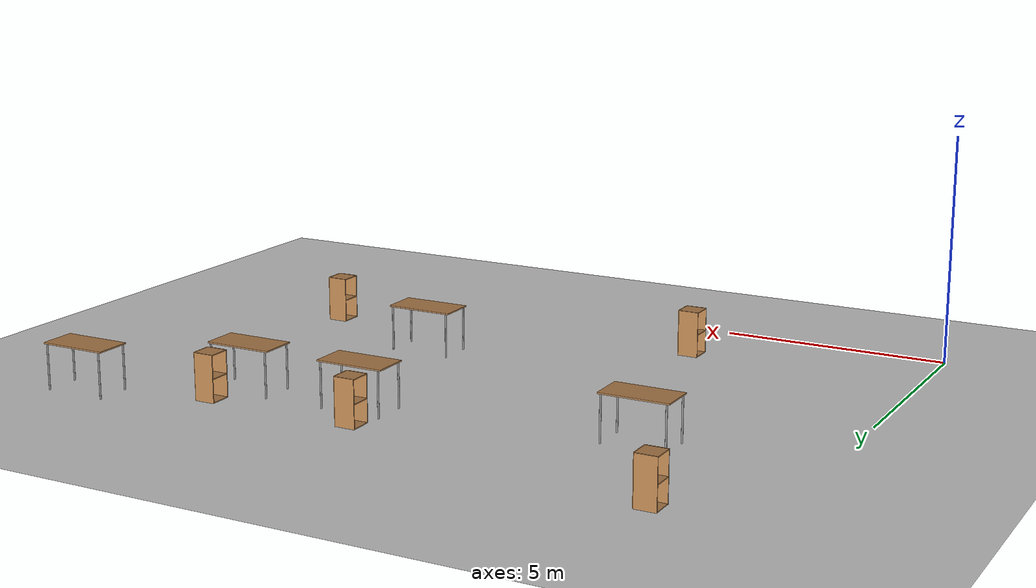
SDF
<sdf version="1.7">
 <world name="default">
  <model name="ground_plane">
   <static>1</static>
   <link name="link">
    <collision name="collision">
     <geometry><plane><normal>0 0 1</normal><size>100 100</size></plane></geometry>
     <surface><friction><ode><mu>100</mu><mu2>50</mu2></ode></friction></surface>
    </collision>
    <visual name="visual">
     <cast_shadows>0</cast_shadows>
     <geometry><plane><normal>0 0 1</normal><size>100 100</size></plane></geometry>
     <material>
      <script><uri>file://media/materials/scripts/gazebo.material</uri><name>Gazebo/Grey</name></script>
     </material>
    </visual>
   </link>
  </model>
  <model name="table_clone_1">
   <static>1</static>
   <link name="link">
    <collision name="surface">
     <pose>0 0 1 0 -0 0</pose>
     <geometry><box><size>1.5 0.8 0.03</size></box></geometry>
     <surface><friction><ode><mu>0.6</mu><mu2>0.6</mu2></ode></friction></surface>
    </collision>
    <visual name="visual1">
     <pose>0 0 1 0 -0 0</pose>
     <geometry><box><size>1.5 0.8 0.03</size></box></geometry>
     <material>
      <script><uri>file://media/materials/scripts/gazebo.material</uri><name>Gazebo/Wood</name></script>
     </material>
    </visual>
    <collision name="front_left_leg">
     <pose>0.68 0.38 0.5 0 -0 0</pose>
     <geometry><cylinder><radius>0.02</radius><length>1</length></cylinder></geometry>
    </collision>
    <visual name="front_left_leg">
     <pose>0.68 0.38 0.5 0 -0 0</pose>
     <geometry><cylinder><radius>0.02</radius><length>1</length></cylinder></geometry>
     <material>
      <script><uri>file://media/materials/scripts/gazebo.material</uri><name>Gazebo/Grey</name></script>
     </material>
    </visual>
    <collision name="front_right_leg">
     <pose>0.68 -0.38 0.5 0 -0 0</pose>
     <geometry><cylinder><radius>0.02</radius><length>1</length></cylinder></geometry>
    </collision>
    <visual name="front_right_leg">
     <pose>0.68 -0.38 0.5 0 -0 0</pose>
     <geometry><cylinder><radius>0.02</radius><length>1</length></cylinder></geometry>
     <material>
      <script><uri>file://media/materials/scripts/gazebo.material</uri><name>Gazebo/Grey</name></script>
     </material>
    </visual>
    <collision name="back_right_leg">
     <pose>-0.68 -0.38 0.5 0 -0 0</pose>
     <geometry><cylinder><radius>0.02</radius><length>1</length></cylinder></geometry>
    </collision>
    <visual name="back_right_leg">
     <pose>-0.68 -0.38 0.5 0 -0 0</pose>
     <geometry><cylinder><radius>0.02</radius><length>1</length></cylinder></geometry>
     <material>
      <script><uri>file://media/materials/scripts/gazebo.material</uri><name>Gazebo/Grey</name></script>
     </material>
    </visual>
    <collision name="back_left_leg">
     <pose>-0.68 0.38 0.5 0 -0 0</pose>
     <geometry><cylinder><radius>0.02</radius><length>1</length></cylinder></geometry>
    </collision>
    <visual name="back_left_leg">
     <pose>-0.68 0.38 0.5 0 -0 0</pose>
     <geometry><cylinder><radius>0.02</radius><length>1</length></cylinder></geometry>
     <material>
      <script><uri>file://media/materials/scripts/gazebo.material</uri><name>Gazebo/Grey</name></script>
     </material>
    </visual>
   </link>
   <pose>3.6038 8.0012 0 0 -0 0</pose>
  </model>
  <model name="table_clone_1_clone">
   <static>1</static>
   <link name="link">
    <collision name="surface">
     <pose>0 0 1 0 -0 0</pose>
     <geometry><box><size>1.5 0.8 0.03</size></box></geometry>
     <surface><friction><ode><mu>0.6</mu><mu2>0.6</mu2></ode></friction></surface>
    </collision>
    <visual name="visual1">
     <pose>0 0 1 0 -0 0</pose>
     <geometry><box><size>1.5 0.8 0.03</size></box></geometry>
     <material>
      <script><uri>file://media/materials/scripts/gazebo.material</uri><name>Gazebo/Wood</name></script>
     </material>
    </visual>
    <collision name="front_left_leg">
     <pose>0.68 0.38 0.5 0 -0 0</pose>
     <geometry><cylinder><radius>0.02</radius><length>1</length></cylinder></geometry>
    </collision>
    <visual name="front_left_leg">
     <pose>0.68 0.38 0.5 0 -0 0</pose>
     <geometry><cylinder><radius>0.02</radius><length>1</length></cylinder></geometry>
     <material>
      <script><uri>file://media/materials/scripts/gazebo.material</uri><name>Gazebo/Grey</name></script>
     </material>
    </visual>
    <collision name="front_right_leg">
     <pose>0.68 -0.38 0.5 0 -0 0</pose>
     <geometry><cylinder><radius>0.02</radius><length>1</length></cylinder></geometry>
    </collision>
    <visual name="front_right_leg">
     <pose>0.68 -0.38 0.5 0 -0 0</pose>
     <geometry><cylinder><radius>0.02</radius><length>1</length></cylinder></geometry>
     <material>
      <script><uri>file://media/materials/scripts/gazebo.material</uri><name>Gazebo/Grey</name></script>
     </material>
    </visual>
    <collision name="back_right_leg">
     <pose>-0.68 -0.38 0.5 0 -0 0</pose>
     <geometry><cylinder><radius>0.02</radius><length>1</length></cylinder></geometry>
    </collision>
    <visual name="back_right_leg">
     <pose>-0.68 -0.38 0.5 0 -0 0</pose>
     <geometry><cylinder><radius>0.02</radius><length>1</length></cylinder></geometry>
     <material>
      <script><uri>file://media/materials/scripts/gazebo.material</uri><name>Gazebo/Grey</name></script>
     </material>
    </visual>
    <collision name="back_left_leg">
     <pose>-0.68 0.38 0.5 0 -0 0</pose>
     <geometry><cylinder><radius>0.02</radius><length>1</length></cylinder></geometry>
    </collision>
    <visual name="back_left_leg">
     <pose>-0.68 0.38 0.5 0 -0 0</pose>
     <geometry><cylinder><radius>0.02</radius><length>1</length></cylinder></geometry>
     <material>
      <script><uri>file://media/materials/scripts/gazebo.material</uri><name>Gazebo/Grey</name></script>
     </material>
    </visual>
   </link>
   <pose>9.45234 8.75079 0 0 -0 0</pose>
  </model>
  <model name="table_clone_1_clone_0_clone_0">
   <static>1</static>
   <link name="link">
    <collision name="surface">
     <pose>0 0 1 0 -0 0</pose>
     <geometry><box><size>1.5 0.8 0.03</size></box></geometry>
     <surface><friction><ode><mu>0.6</mu><mu2>0.6</mu2></ode></friction></surface>
    </collision>
    <visual name="visual1">
     <pose>0 0 1 0 -0 0</pose>
     <geometry><box><size>1.5 0.8 0.03</size></box></geometry>
     <material>
      <script><uri>file://media/materials/scripts/gazebo.material</uri><name>Gazebo/Wood</name></script>
     </material>
    </visual>
    <collision name="front_left_leg">
     <pose>0.68 0.38 0.5 0 -0 0</pose>
     <geometry><cylinder><radius>0.02</radius><length>1</length></cylinder></geometry>
    </collision>
    <visual name="front_left_leg">
     <pose>0.68 0.38 0.5 0 -0 0</pose>
     <geometry><cylinder><radius>0.02</radius><length>1</length></cylinder></geometry>
     <material>
      <script><uri>file://media/materials/scripts/gazebo.material</uri><name>Gazebo/Grey</name></script>
     </material>
    </visual>
    <collision name="front_right_leg">
     <pose>0.68 -0.38 0.5 0 -0 0</pose>
     <geometry><cylinder><radius>0.02</radius><length>1</length></cylinder></geometry>
    </collision>
    <visual name="front_right_leg">
     <pose>0.68 -0.38 0.5 0 -0 0</pose>
     <geometry><cylinder><radius>0.02</radius><length>1</length></cylinder></geometry>
     <material>
      <script><uri>file://media/materials/scripts/gazebo.material</uri><name>Gazebo/Grey</name></script>
     </material>
    </visual>
    <collision name="back_right_leg">
     <pose>-0.68 -0.38 0.5 0 -0 0</pose>
     <geometry><cylinder><radius>0.02</radius><length>1</length></cylinder></geometry>
    </collision>
    <visual name="back_right_leg">
     <pose>-0.68 -0.38 0.5 0 -0 0</pose>
     <geometry><cylinder><radius>0.02</radius><length>1</length></cylinder></geometry>
     <material>
      <script><uri>file://media/materials/scripts/gazebo.material</uri><name>Gazebo/Grey</name></script>
     </material>
    </visual>
    <collision name="back_left_leg">
     <pose>-0.68 0.38 0.5 0 -0 0</pose>
     <geometry><cylinder><radius>0.02</radius><length>1</length></cylinder></geometry>
    </collision>
    <visual name="back_left_leg">
     <pose>-0.68 0.38 0.5 0 -0 0</pose>
     <geometry><cylinder><radius>0.02</radius><length>1</length></cylinder></geometry>
     <material>
      <script><uri>file://media/materials/scripts/gazebo.material</uri><name>Gazebo/Grey</name></script>
     </material>
    </visual>
   </link>
   <pose>10.4445 4.43795 0 0 -0 0</pose>
  </model>
  <model name="cabinet">
   <static>1</static>
   <link name="cabinet_bottom_plate">
    <inertial>
     <pose>0 0 -1 0 -0 0</pose>
     <inertia><ixx>2.05</ixx><ixy>0</ixy><ixz>0</ixz><iyy>2.05</iyy><iyz>0</iyz><izz>2.05</izz></inertia>
     <mass>25</mass>
    </inertial>
    <collision name="cabinet_bottom_plate_geom">
     <pose>0 0 0.01 0 -0 0</pose>
     <geometry><box><size>0.45 0.45 0.02</size></box></geometry>
    </collision>
    <visual name="cabinet_bottom_plate_geom_visual">
     <pose>0 0 0.01 0 -0 0</pose>
     <geometry><box><size>0.45 0.45 0.02</size></box></geometry>
     <material>
      <script><uri>file://media/materials/scripts/gazebo.material</uri><name>Gazebo/Wood</name></script>
     </material>
    </visual>
    <collision name="cabinet_bottom_plate_geom_cabinet_back_plate">
     <pose>0.235 0 0.51 0 -0 0</pose>
     <geometry><box><size>0.02 0.45 1.02</size></box></geometry>
    </collision>
    <visual name="cabinet_bottom_plate_geom_cabinet_back_plate_visual">
     <pose>0.235 0 0.51 0 -0 0</pose>
     <geometry><box><size>0.02 0.45 1.02</size></box></geometry>
     <material>
      <script><uri>file://media/materials/scripts/gazebo.material</uri><name>Gazebo/Wood</name></script>
     </material>
    </visual>
    <collision name="cabinet_bottom_plate_geom_cabinet_left_plate">
     <pose>0 0.235 0.51 0 -0 0</pose>
     <geometry><box><size>0.45 0.02 1.02</size></box></geometry>
    </collision>
    <visual name="cabinet_bottom_plate_geom_cabinet_left_plate_visual">
     <pose>0 0.235 0.51 0 -0 0</pose>
     <geometry><box><size>0.45 0.02 1.02</size></box></geometry>
     <material>
      <script><uri>file://media/materials/scripts/gazebo.material</uri><name>Gazebo/Wood</name></script>
     </material>
    </visual>
    <collision name="cabinet_bottom_plate_geom_cabinet_middle_plate">
     <pose>0 0 0.51 0 -0 0</pose>
     <geometry><box><size>0.45 0.45 0.02</size></box></geometry>
    </collision>
    <visual name="cabinet_bottom_plate_geom_cabinet_middle_plate_visual">
     <pose>0 0 0.51 0 -0 0</pose>
     <geometry><box><size>0.45 0.45 0.02</size></box></geometry>
     <material>
      <script><uri>file://media/materials/scripts/gazebo.material</uri><name>Gazebo/Wood</name></script>
     </material>
    </visual>
    <collision name="cabinet_bottom_plate_geom_cabinet_right_plate">
     <pose>0 -0.235 0.51 0 -0 0</pose>
     <geometry><box><size>0.45 0.02 1.02</size></box></geometry>
    </collision>
    <visual name="cabinet_bottom_plate_geom_cabinet_right_plate_visual">
     <pose>0 -0.235 0.51 0 -0 0</pose>
     <geometry><box><size>0.45 0.02 1.02</size></box></geometry>
     <material>
      <script><uri>file://media/materials/scripts/gazebo.material</uri><name>Gazebo/Wood</name></script>
     </material>
    </visual>
    <collision name="cabinet_bottom_plate_geom_cabinet_top_plate">
     <pose>0 0 1.01 0 -0 0</pose>
     <geometry><box><size>0.45 0.45 0.02</size></box></geometry>
    </collision>
    <visual name="cabinet_bottom_plate_geom_cabinet_top_plate_visual">
     <pose>0 0 1.01 0 -0 0</pose>
     <geometry><box><size>0.45 0.45 0.02</size></box></geometry>
     <material>
      <script><uri>file://media/materials/scripts/gazebo.material</uri><name>Gazebo/Wood</name></script>
     </material>
    </visual>
   </link>
   <pose>2.07586 10.9413 0 0 -0 0</pose>
  </model>
  <model name="cabinet_clone">
   <static>1</static>
   <link name="cabinet_bottom_plate">
    <inertial>
     <pose>0 0 -1 0 -0 0</pose>
     <inertia><ixx>2.05</ixx><ixy>0</ixy><ixz>0</ixz><iyy>2.05</iyy><iyz>0</iyz><izz>2.05</izz></inertia>
     <mass>25</mass>
    </inertial>
    <collision name="cabinet_bottom_plate_geom">
     <pose>0 0 0.01 0 -0 0</pose>
     <geometry><box><size>0.45 0.45 0.02</size></box></geometry>
    </collision>
    <visual name="cabinet_bottom_plate_geom_visual">
     <pose>0 0 0.01 0 -0 0</pose>
     <geometry><box><size>0.45 0.45 0.02</size></box></geometry>
     <material>
      <script><uri>file://media/materials/scripts/gazebo.material</uri><name>Gazebo/Wood</name></script>
     </material>
    </visual>
    <collision name="cabinet_bottom_plate_geom_cabinet_back_plate">
     <pose>0.235 0 0.51 0 -0 0</pose>
     <geometry><box><size>0.02 0.45 1.02</size></box></geometry>
    </collision>
    <visual name="cabinet_bottom_plate_geom_cabinet_back_plate_visual">
     <pose>0.235 0 0.51 0 -0 0</pose>
     <geometry><box><size>0.02 0.45 1.02</size></box></geometry>
     <material>
      <script><uri>file://media/materials/scripts/gazebo.material</uri><name>Gazebo/Wood</name></script>
     </material>
    </visual>
    <collision name="cabinet_bottom_plate_geom_cabinet_left_plate">
     <pose>0 0.235 0.51 0 -0 0</pose>
     <geometry><box><size>0.45 0.02 1.02</size></box></geometry>
    </collision>
    <visual name="cabinet_bottom_plate_geom_cabinet_left_plate_visual">
     <pose>0 0.235 0.51 0 -0 0</pose>
     <geometry><box><size>0.45 0.02 1.02</size></box></geometry>
     <material>
      <script><uri>file://media/materials/scripts/gazebo.material</uri><name>Gazebo/Wood</name></script>
     </material>
    </visual>
    <collision name="cabinet_bottom_plate_geom_cabinet_middle_plate">
     <pose>0 0 0.51 0 -0 0</pose>
     <geometry><box><size>0.45 0.45 0.02</size></box></geometry>
    </collision>
    <visual name="cabinet_bottom_plate_geom_cabinet_middle_plate_visual">
     <pose>0 0 0.51 0 -0 0</pose>
     <geometry><box><size>0.45 0.45 0.02</size></box></geometry>
     <material>
      <script><uri>file://media/materials/scripts/gazebo.material</uri><name>Gazebo/Wood</name></script>
     </material>
    </visual>
    <collision name="cabinet_bottom_plate_geom_cabinet_right_plate">
     <pose>0 -0.235 0.51 0 -0 0</pose>
     <geometry><box><size>0.45 0.02 1.02</size></box></geometry>
    </collision>
    <visual name="cabinet_bottom_plate_geom_cabinet_right_plate_visual">
     <pose>0 -0.235 0.51 0 -0 0</pose>
     <geometry><box><size>0.45 0.02 1.02</size></box></geometry>
     <material>
      <script><uri>file://media/materials/scripts/gazebo.material</uri><name>Gazebo/Wood</name></script>
     </material>
    </visual>
    <collision name="cabinet_bottom_plate_geom_cabinet_top_plate">
     <pose>0 0 1.01 0 -0 0</pose>
     <geometry><box><size>0.45 0.45 0.02</size></box></geometry>
    </collision>
    <visual name="cabinet_bottom_plate_geom_cabinet_top_plate_visual">
     <pose>0 0 1.01 0 -0 0</pose>
     <geometry><box><size>0.45 0.45 0.02</size></box></geometry>
     <material>
      <script><uri>file://media/materials/scripts/gazebo.material</uri><name>Gazebo/Wood</name></script>
     </material>
    </visual>
   </link>
   <pose>5.13992 1.93645 0 0 -0 0</pose>
  </model>
  <model name="cabinet_clone_clone_0">
   <static>1</static>
   <link name="cabinet_bottom_plate">
    <inertial>
     <pose>0 0 -1 0 -0 0</pose>
     <inertia><ixx>2.05</ixx><ixy>0</ixy><ixz>0</ixz><iyy>2.05</iyy><iyz>0</iyz><izz>2.05</izz></inertia>
     <mass>25</mass>
    </inertial>
    <collision name="cabinet_bottom_plate_geom">
     <pose>0 0 0.01 0 -0 0</pose>
     <geometry><box><size>0.45 0.45 0.02</size></box></geometry>
    </collision>
    <visual name="cabinet_bottom_plate_geom_visual">
     <pose>0 0 0.01 0 -0 0</pose>
     <geometry><box><size>0.45 0.45 0.02</size></box></geometry>
     <material>
      <script><uri>file://media/materials/scripts/gazebo.material</uri><name>Gazebo/Wood</name></script>
     </material>
    </visual>
    <collision name="cabinet_bottom_plate_geom_cabinet_back_plate">
     <pose>0.235 0 0.51 0 -0 0</pose>
     <geometry><box><size>0.02 0.45 1.02</size></box></geometry>
    </collision>
    <visual name="cabinet_bottom_plate_geom_cabinet_back_plate_visual">
     <pose>0.235 0 0.51 0 -0 0</pose>
     <geometry><box><size>0.02 0.45 1.02</size></box></geometry>
     <material>
      <script><uri>file://media/materials/scripts/gazebo.material</uri><name>Gazebo/Wood</name></script>
     </material>
    </visual>
    <collision name="cabinet_bottom_plate_geom_cabinet_left_plate">
     <pose>0 0.235 0.51 0 -0 0</pose>
     <geometry><box><size>0.45 0.02 1.02</size></box></geometry>
    </collision>
    <visual name="cabinet_bottom_plate_geom_cabinet_left_plate_visual">
     <pose>0 0.235 0.51 0 -0 0</pose>
     <geometry><box><size>0.45 0.02 1.02</size></box></geometry>
     <material>
      <script><uri>file://media/materials/scripts/gazebo.material</uri><name>Gazebo/Wood</name></script>
     </material>
    </visual>
    <collision name="cabinet_bottom_plate_geom_cabinet_middle_plate">
     <pose>0 0 0.51 0 -0 0</pose>
     <geometry><box><size>0.45 0.45 0.02</size></box></geometry>
    </collision>
    <visual name="cabinet_bottom_plate_geom_cabinet_middle_plate_visual">
     <pose>0 0 0.51 0 -0 0</pose>
     <geometry><box><size>0.45 0.45 0.02</size></box></geometry>
     <material>
      <script><uri>file://media/materials/scripts/gazebo.material</uri><name>Gazebo/Wood</name></script>
     </material>
    </visual>
    <collision name="cabinet_bottom_plate_geom_cabinet_right_plate">
     <pose>0 -0.235 0.51 0 -0 0</pose>
     <geometry><box><size>0.45 0.02 1.02</size></box></geometry>
    </collision>
    <visual name="cabinet_bottom_plate_geom_cabinet_right_plate_visual">
     <pose>0 -0.235 0.51 0 -0 0</pose>
     <geometry><box><size>0.45 0.02 1.02</size></box></geometry>
     <material>
      <script><uri>file://media/materials/scripts/gazebo.material</uri><name>Gazebo/Wood</name></script>
     </material>
    </visual>
    <collision name="cabinet_bottom_plate_geom_cabinet_top_plate">
     <pose>0 0 1.01 0 -0 0</pose>
     <geometry><box><size>0.45 0.45 0.02</size></box></geometry>
    </collision>
    <visual name="cabinet_bottom_plate_geom_cabinet_top_plate_visual">
     <pose>0 0 1.01 0 -0 0</pose>
     <geometry><box><size>0.45 0.45 0.02</size></box></geometry>
     <material>
      <script><uri>file://media/materials/scripts/gazebo.material</uri><name>Gazebo/Wood</name></script>
     </material>
    </visual>
   </link>
   <pose>12.4476 9.68126 0 0 -0 0</pose>
  </model>
  <model name="cabinet_clone_clone_clone_0">
   <static>1</static>
   <link name="cabinet_bottom_plate">
    <inertial>
     <pose>0 0 -1 0 -0 0</pose>
     <inertia><ixx>2.05</ixx><ixy>0</ixy><ixz>0</ixz><iyy>2.05</iyy><iyz>0</iyz><izz>2.05</izz></inertia>
     <mass>25</mass>
    </inertial>
    <collision name="cabinet_bottom_plate_geom">
     <pose>0 0 0.01 0 -0 0</pose>
     <geometry><box><size>0.45 0.45 0.02</size></box></geometry>
    </collision>
    <visual name="cabinet_bottom_plate_geom_visual">
     <pose>0 0 0.01 0 -0 0</pose>
     <geometry><box><size>0.45 0.45 0.02</size></box></geometry>
     <material>
      <script><uri>file://media/materials/scripts/gazebo.material</uri><name>Gazebo/Wood</name></script>
     </material>
    </visual>
    <collision name="cabinet_bottom_plate_geom_cabinet_back_plate">
     <pose>0.235 0 0.51 0 -0 0</pose>
     <geometry><box><size>0.02 0.45 1.02</size></box></geometry>
    </collision>
    <visual name="cabinet_bottom_plate_geom_cabinet_back_plate_visual">
     <pose>0.235 0 0.51 0 -0 0</pose>
     <geometry><box><size>0.02 0.45 1.02</size></box></geometry>
     <material>
      <script><uri>file://media/materials/scripts/gazebo.material</uri><name>Gazebo/Wood</name></script>
     </material>
    </visual>
    <collision name="cabinet_bottom_plate_geom_cabinet_left_plate">
     <pose>0 0.235 0.51 0 -0 0</pose>
     <geometry><box><size>0.45 0.02 1.02</size></box></geometry>
    </collision>
    <visual name="cabinet_bottom_plate_geom_cabinet_left_plate_visual">
     <pose>0 0.235 0.51 0 -0 0</pose>
     <geometry><box><size>0.45 0.02 1.02</size></box></geometry>
     <material>
      <script><uri>file://media/materials/scripts/gazebo.material</uri><name>Gazebo/Wood</name></script>
     </material>
    </visual>
    <collision name="cabinet_bottom_plate_geom_cabinet_middle_plate">
     <pose>0 0 0.51 0 -0 0</pose>
     <geometry><box><size>0.45 0.45 0.02</size></box></geometry>
    </collision>
    <visual name="cabinet_bottom_plate_geom_cabinet_middle_plate_visual">
     <pose>0 0 0.51 0 -0 0</pose>
     <geometry><box><size>0.45 0.45 0.02</size></box></geometry>
     <material>
      <script><uri>file://media/materials/scripts/gazebo.material</uri><name>Gazebo/Wood</name></script>
     </material>
    </visual>
    <collision name="cabinet_bottom_plate_geom_cabinet_right_plate">
     <pose>0 -0.235 0.51 0 -0 0</pose>
     <geometry><box><size>0.45 0.02 1.02</size></box></geometry>
    </collision>
    <visual name="cabinet_bottom_plate_geom_cabinet_right_plate_visual">
     <pose>0 -0.235 0.51 0 -0 0</pose>
     <geometry><box><size>0.45 0.02 1.02</size></box></geometry>
     <material>
      <script><uri>file://media/materials/scripts/gazebo.material</uri><name>Gazebo/Wood</name></script>
     </material>
    </visual>
    <collision name="cabinet_bottom_plate_geom_cabinet_top_plate">
     <pose>0 0 1.01 0 -0 0</pose>
     <geometry><box><size>0.45 0.45 0.02</size></box></geometry>
    </collision>
    <visual name="cabinet_bottom_plate_geom_cabinet_top_plate_visual">
     <pose>0 0 1.01 0 -0 0</pose>
     <geometry><box><size>0.45 0.45 0.02</size></box></geometry>
     <material>
      <script><uri>file://media/materials/scripts/gazebo.material</uri><name>Gazebo/Wood</name></script>
     </material>
    </visual>
   </link>
   <pose>13.5963 3.10306 0 0 -0 0</pose>
  </model>
  <model name="cabinet_clone_clone_clone_clone_clone">
   <static>1</static>
   <link name="cabinet_bottom_plate">
    <inertial>
     <pose>0 0 -1 0 -0 0</pose>
     <inertia><ixx>2.05</ixx><ixy>0</ixy><ixz>0</ixz><iyy>2.05</iyy><iyz>0</iyz><izz>2.05</izz></inertia>
     <mass>25</mass>
    </inertial>
    <collision name="cabinet_bottom_plate_geom">
     <pose>0 0 0.01 0 -0 0</pose>
     <geometry><box><size>0.45 0.45 0.02</size></box></geometry>
    </collision>
    <visual name="cabinet_bottom_plate_geom_visual">
     <pose>0 0 0.01 0 -0 0</pose>
     <geometry><box><size>0.45 0.45 0.02</size></box></geometry>
     <material>
      <script><uri>file://media/materials/scripts/gazebo.material</uri><name>Gazebo/Wood</name></script>
     </material>
    </visual>
    <collision name="cabinet_bottom_plate_geom_cabinet_back_plate">
     <pose>0.235 0 0.51 0 -0 0</pose>
     <geometry><box><size>0.02 0.45 1.02</size></box></geometry>
    </collision>
    <visual name="cabinet_bottom_plate_geom_cabinet_back_plate_visual">
     <pose>0.235 0 0.51 0 -0 0</pose>
     <geometry><box><size>0.02 0.45 1.02</size></box></geometry>
     <material>
      <script><uri>file://media/materials/scripts/gazebo.material</uri><name>Gazebo/Wood</name></script>
     </material>
    </visual>
    <collision name="cabinet_bottom_plate_geom_cabinet_left_plate">
     <pose>0 0.235 0.51 0 -0 0</pose>
     <geometry><box><size>0.45 0.02 1.02</size></box></geometry>
    </collision>
    <visual name="cabinet_bottom_plate_geom_cabinet_left_plate_visual">
     <pose>0 0.235 0.51 0 -0 0</pose>
     <geometry><box><size>0.45 0.02 1.02</size></box></geometry>
     <material>
      <script><uri>file://media/materials/scripts/gazebo.material</uri><name>Gazebo/Wood</name></script>
     </material>
    </visual>
    <collision name="cabinet_bottom_plate_geom_cabinet_middle_plate">
     <pose>0 0 0.51 0 -0 0</pose>
     <geometry><box><size>0.45 0.45 0.02</size></box></geometry>
    </collision>
    <visual name="cabinet_bottom_plate_geom_cabinet_middle_plate_visual">
     <pose>0 0 0.51 0 -0 0</pose>
     <geometry><box><size>0.45 0.45 0.02</size></box></geometry>
     <material>
      <script><uri>file://media/materials/scripts/gazebo.material</uri><name>Gazebo/Wood</name></script>
     </material>
    </visual>
    <collision name="cabinet_bottom_plate_geom_cabinet_right_plate">
     <pose>0 -0.235 0.51 0 -0 0</pose>
     <geometry><box><size>0.45 0.02 1.02</size></box></geometry>
    </collision>
    <visual name="cabinet_bottom_plate_geom_cabinet_right_plate_visual">
     <pose>0 -0.235 0.51 0 -0 0</pose>
     <geometry><box><size>0.45 0.02 1.02</size></box></geometry>
     <material>
      <script><uri>file://media/materials/scripts/gazebo.material</uri><name>Gazebo/Wood</name></script>
     </material>
    </visual>
    <collision name="cabinet_bottom_plate_geom_cabinet_top_plate">
     <pose>0 0 1.01 0 -0 0</pose>
     <geometry><box><size>0.45 0.45 0.02</size></box></geometry>
    </collision>
    <visual name="cabinet_bottom_plate_geom_cabinet_top_plate_visual">
     <pose>0 0 1.01 0 -0 0</pose>
     <geometry><box><size>0.45 0.45 0.02</size></box></geometry>
     <material>
      <script><uri>file://media/materials/scripts/gazebo.material</uri><name>Gazebo/Wood</name></script>
     </material>
    </visual>
   </link>
   <pose>9.03404 9.70425 0 0 -0 0</pose>
  </model>
  <model name="table_clone_1_clone_0_clone_0_clone">
   <static>1</static>
   <link name="link">
    <collision name="surface">
     <pose>0 0 1 0 -0 0</pose>
     <geometry><box><size>1.5 0.8 0.03</size></box></geometry>
     <surface><friction><ode><mu>0.6</mu><mu2>0.6</mu2></ode></friction></surface>
    </collision>
    <visual name="visual1">
     <pose>0 0 1 0 -0 0</pose>
     <geometry><box><size>1.5 0.8 0.03</size></box></geometry>
     <material>
      <script><uri>file://media/materials/scripts/gazebo.material</uri><name>Gazebo/Wood</name></script>
     </material>
    </visual>
    <collision name="front_left_leg">
     <pose>0.68 0.38 0.5 0 -0 0</pose>
     <geometry><cylinder><radius>0.02</radius><length>1</length></cylinder></geometry>
    </collision>
    <visual name="front_left_leg">
     <pose>0.68 0.38 0.5 0 -0 0</pose>
     <geometry><cylinder><radius>0.02</radius><length>1</length></cylinder></geometry>
     <material>
      <script><uri>file://media/materials/scripts/gazebo.material</uri><name>Gazebo/Grey</name></script>
     </material>
    </visual>
    <collision name="front_right_leg">
     <pose>0.68 -0.38 0.5 0 -0 0</pose>
     <geometry><cylinder><radius>0.02</radius><length>1</length></cylinder></geometry>
    </collision>
    <visual name="front_right_leg">
     <pose>0.68 -0.38 0.5 0 -0 0</pose>
     <geometry><cylinder><radius>0.02</radius><length>1</length></cylinder></geometry>
     <material>
      <script><uri>file://media/materials/scripts/gazebo.material</uri><name>Gazebo/Grey</name></script>
     </material>
    </visual>
    <collision name="back_right_leg">
     <pose>-0.68 -0.38 0.5 0 -0 0</pose>
     <geometry><cylinder><radius>0.02</radius><length>1</length></cylinder></geometry>
    </collision>
    <visual name="back_right_leg">
     <pose>-0.68 -0.38 0.5 0 -0 0</pose>
     <geometry><cylinder><radius>0.02</radius><length>1</length></cylinder></geometry>
     <material>
      <script><uri>file://media/materials/scripts/gazebo.material</uri><name>Gazebo/Grey</name></script>
     </material>
    </visual>
    <collision name="back_left_leg">
     <pose>-0.68 0.38 0.5 0 -0 0</pose>
     <geometry><cylinder><radius>0.02</radius><length>1</length></cylinder></geometry>
    </collision>
    <visual name="back_left_leg">
     <pose>-0.68 0.38 0.5 0 -0 0</pose>
     <geometry><cylinder><radius>0.02</radius><length>1</length></cylinder></geometry>
     <material>
      <script><uri>file://media/materials/scripts/gazebo.material</uri><name>Gazebo/Grey</name></script>
     </material>
    </visual>
   </link>
   <pose>12.1802 8.73997 0 0 -0 0</pose>
  </model>
  <model name="table_clone_1_clone_0_clone_0_clone_clone">
   <static>1</static>
   <link name="link">
    <collision name="surface">
     <pose>0 0 1 0 -0 0</pose>
     <geometry><box><size>1.5 0.8 0.03</size></box></geometry>
     <surface><friction><ode><mu>0.6</mu><mu2>0.6</mu2></ode></friction></surface>
    </collision>
    <visual name="visual1">
     <pose>0 0 1 0 -0 0</pose>
     <geometry><box><size>1.5 0.8 0.03</size></box></geometry>
     <material>
      <script><uri>file://media/materials/scripts/gazebo.material</uri><name>Gazebo/Wood</name></script>
     </material>
    </visual>
    <collision name="front_left_leg">
     <pose>0.68 0.38 0.5 0 -0 0</pose>
     <geometry><cylinder><radius>0.02</radius><length>1</length></cylinder></geometry>
    </collision>
    <visual name="front_left_leg">
     <pose>0.68 0.38 0.5 0 -0 0</pose>
     <geometry><cylinder><radius>0.02</radius><length>1</length></cylinder></geometry>
     <material>
      <script><uri>file://media/materials/scripts/gazebo.material</uri><name>Gazebo/Grey</name></script>
     </material>
    </visual>
    <collision name="front_right_leg">
     <pose>0.68 -0.38 0.5 0 -0 0</pose>
     <geometry><cylinder><radius>0.02</radius><length>1</length></cylinder></geometry>
    </collision>
    <visual name="front_right_leg">
     <pose>0.68 -0.38 0.5 0 -0 0</pose>
     <geometry><cylinder><radius>0.02</radius><length>1</length></cylinder></geometry>
     <material>
      <script><uri>file://media/materials/scripts/gazebo.material</uri><name>Gazebo/Grey</name></script>
     </material>
    </visual>
    <collision name="back_right_leg">
     <pose>-0.68 -0.38 0.5 0 -0 0</pose>
     <geometry><cylinder><radius>0.02</radius><length>1</length></cylinder></geometry>
    </collision>
    <visual name="back_right_leg">
     <pose>-0.68 -0.38 0.5 0 -0 0</pose>
     <geometry><cylinder><radius>0.02</radius><length>1</length></cylinder></geometry>
     <material>
      <script><uri>file://media/materials/scripts/gazebo.material</uri><name>Gazebo/Grey</name></script>
     </material>
    </visual>
    <collision name="back_left_leg">
     <pose>-0.68 0.38 0.5 0 -0 0</pose>
     <geometry><cylinder><radius>0.02</radius><length>1</length></cylinder></geometry>
    </collision>
    <visual name="back_left_leg">
     <pose>-0.68 0.38 0.5 0 -0 0</pose>
     <geometry><cylinder><radius>0.02</radius><length>1</length></cylinder></geometry>
     <material>
      <script><uri>file://media/materials/scripts/gazebo.material</uri><name>Gazebo/Grey</name></script>
     </material>
    </visual>
   </link>
   <pose>15.118 10.4035 0 0 -0 0</pose>
  </model>
 </world>
</sdf>
